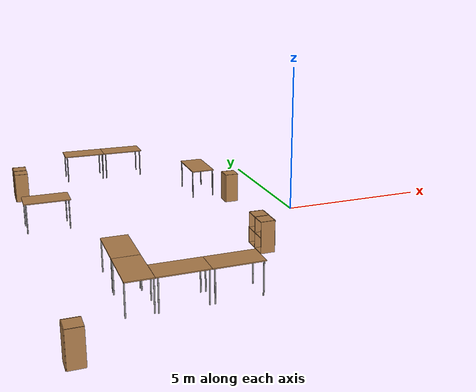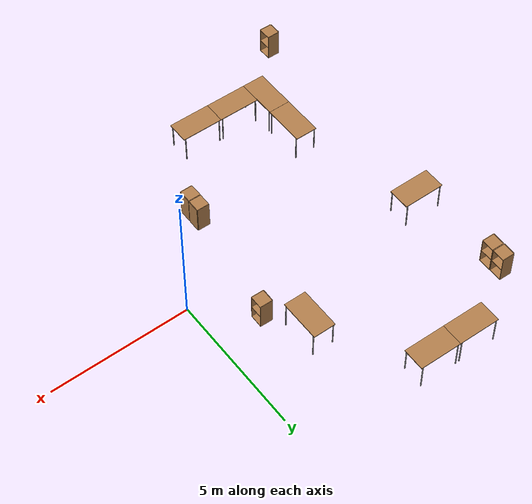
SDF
<sdf version="1.6">
 <world name="default">
  <model name="table_clone_clone_1">
   <static>1</static>
   <link name="link">
    <collision name="surface">
     <pose>0 0 1 0 -0 0</pose>
     <geometry><box><size>1.5 0.8 0.03</size></box></geometry>
     <surface><friction><ode><mu>0.6</mu><mu2>0.6</mu2></ode></friction></surface>
    </collision>
    <visual name="visual1">
     <pose>0 0 1 0 -0 0</pose>
     <geometry><box><size>1.5 0.8 0.03</size></box></geometry>
     <material>
      <script><uri>file://media/materials/scripts/gazebo.material</uri><name>Gazebo/Wood</name></script>
     </material>
    </visual>
    <collision name="front_left_leg">
     <pose>0.68 0.38 0.5 0 -0 0</pose>
     <geometry><cylinder><radius>0.02</radius><length>1</length></cylinder></geometry>
    </collision>
    <visual name="front_left_leg">
     <pose>0.68 0.38 0.5 0 -0 0</pose>
     <geometry><cylinder><radius>0.02</radius><length>1</length></cylinder></geometry>
     <material>
      <script><uri>file://media/materials/scripts/gazebo.material</uri><name>Gazebo/Grey</name></script>
     </material>
    </visual>
    <collision name="front_right_leg">
     <pose>0.68 -0.38 0.5 0 -0 0</pose>
     <geometry><cylinder><radius>0.02</radius><length>1</length></cylinder></geometry>
    </collision>
    <visual name="front_right_leg">
     <pose>0.68 -0.38 0.5 0 -0 0</pose>
     <geometry><cylinder><radius>0.02</radius><length>1</length></cylinder></geometry>
     <material>
      <script><uri>file://media/materials/scripts/gazebo.material</uri><name>Gazebo/Grey</name></script>
     </material>
    </visual>
    <collision name="back_right_leg">
     <pose>-0.68 -0.38 0.5 0 -0 0</pose>
     <geometry><cylinder><radius>0.02</radius><length>1</length></cylinder></geometry>
    </collision>
    <visual name="back_right_leg">
     <pose>-0.68 -0.38 0.5 0 -0 0</pose>
     <geometry><cylinder><radius>0.02</radius><length>1</length></cylinder></geometry>
     <material>
      <script><uri>file://media/materials/scripts/gazebo.material</uri><name>Gazebo/Grey</name></script>
     </material>
    </visual>
    <collision name="back_left_leg">
     <pose>-0.68 0.38 0.5 0 -0 0</pose>
     <geometry><cylinder><radius>0.02</radius><length>1</length></cylinder></geometry>
    </collision>
    <visual name="back_left_leg">
     <pose>-0.68 0.38 0.5 0 -0 0</pose>
     <geometry><cylinder><radius>0.02</radius><length>1</length></cylinder></geometry>
     <material>
      <script><uri>file://media/materials/scripts/gazebo.material</uri><name>Gazebo/Grey</name></script>
     </material>
    </visual>
   </link>
   <pose>-6.87483 -5.09975 0 0 -0 1.56881</pose>
  </model>
  <model name="table_clone_clone_2">
   <static>1</static>
   <link name="link">
    <collision name="surface">
     <pose>0 0 1 0 -0 0</pose>
     <geometry><box><size>1.5 0.8 0.03</size></box></geometry>
     <surface><friction><ode><mu>0.6</mu><mu2>0.6</mu2></ode></friction></surface>
    </collision>
    <visual name="visual1">
     <pose>0 0 1 0 -0 0</pose>
     <geometry><box><size>1.5 0.8 0.03</size></box></geometry>
     <material>
      <script><uri>file://media/materials/scripts/gazebo.material</uri><name>Gazebo/Wood</name></script>
     </material>
    </visual>
    <collision name="front_left_leg">
     <pose>0.68 0.38 0.5 0 -0 0</pose>
     <geometry><cylinder><radius>0.02</radius><length>1</length></cylinder></geometry>
    </collision>
    <visual name="front_left_leg">
     <pose>0.68 0.38 0.5 0 -0 0</pose>
     <geometry><cylinder><radius>0.02</radius><length>1</length></cylinder></geometry>
     <material>
      <script><uri>file://media/materials/scripts/gazebo.material</uri><name>Gazebo/Grey</name></script>
     </material>
    </visual>
    <collision name="front_right_leg">
     <pose>0.68 -0.38 0.5 0 -0 0</pose>
     <geometry><cylinder><radius>0.02</radius><length>1</length></cylinder></geometry>
    </collision>
    <visual name="front_right_leg">
     <pose>0.68 -0.38 0.5 0 -0 0</pose>
     <geometry><cylinder><radius>0.02</radius><length>1</length></cylinder></geometry>
     <material>
      <script><uri>file://media/materials/scripts/gazebo.material</uri><name>Gazebo/Grey</name></script>
     </material>
    </visual>
    <collision name="back_right_leg">
     <pose>-0.68 -0.38 0.5 0 -0 0</pose>
     <geometry><cylinder><radius>0.02</radius><length>1</length></cylinder></geometry>
    </collision>
    <visual name="back_right_leg">
     <pose>-0.68 -0.38 0.5 0 -0 0</pose>
     <geometry><cylinder><radius>0.02</radius><length>1</length></cylinder></geometry>
     <material>
      <script><uri>file://media/materials/scripts/gazebo.material</uri><name>Gazebo/Grey</name></script>
     </material>
    </visual>
    <collision name="back_left_leg">
     <pose>-0.68 0.38 0.5 0 -0 0</pose>
     <geometry><cylinder><radius>0.02</radius><length>1</length></cylinder></geometry>
    </collision>
    <visual name="back_left_leg">
     <pose>-0.68 0.38 0.5 0 -0 0</pose>
     <geometry><cylinder><radius>0.02</radius><length>1</length></cylinder></geometry>
     <material>
      <script><uri>file://media/materials/scripts/gazebo.material</uri><name>Gazebo/Grey</name></script>
     </material>
    </visual>
   </link>
   <pose>-6.86927 -3.59813 0 0 -0 1.56849</pose>
  </model>
  <model name="table_clone_clone_3">
   <static>1</static>
   <link name="link">
    <collision name="surface">
     <pose>0 0 1 0 -0 0</pose>
     <geometry><box><size>1.5 0.8 0.03</size></box></geometry>
     <surface><friction><ode><mu>0.6</mu><mu2>0.6</mu2></ode></friction></surface>
    </collision>
    <visual name="visual1">
     <pose>0 0 1 0 -0 0</pose>
     <geometry><box><size>1.5 0.8 0.03</size></box></geometry>
     <material>
      <script><uri>file://media/materials/scripts/gazebo.material</uri><name>Gazebo/Wood</name></script>
     </material>
    </visual>
    <collision name="front_left_leg">
     <pose>0.68 0.38 0.5 0 -0 0</pose>
     <geometry><cylinder><radius>0.02</radius><length>1</length></cylinder></geometry>
    </collision>
    <visual name="front_left_leg">
     <pose>0.68 0.38 0.5 0 -0 0</pose>
     <geometry><cylinder><radius>0.02</radius><length>1</length></cylinder></geometry>
     <material>
      <script><uri>file://media/materials/scripts/gazebo.material</uri><name>Gazebo/Grey</name></script>
     </material>
    </visual>
    <collision name="front_right_leg">
     <pose>0.68 -0.38 0.5 0 -0 0</pose>
     <geometry><cylinder><radius>0.02</radius><length>1</length></cylinder></geometry>
    </collision>
    <visual name="front_right_leg">
     <pose>0.68 -0.38 0.5 0 -0 0</pose>
     <geometry><cylinder><radius>0.02</radius><length>1</length></cylinder></geometry>
     <material>
      <script><uri>file://media/materials/scripts/gazebo.material</uri><name>Gazebo/Grey</name></script>
     </material>
    </visual>
    <collision name="back_right_leg">
     <pose>-0.68 -0.38 0.5 0 -0 0</pose>
     <geometry><cylinder><radius>0.02</radius><length>1</length></cylinder></geometry>
    </collision>
    <visual name="back_right_leg">
     <pose>-0.68 -0.38 0.5 0 -0 0</pose>
     <geometry><cylinder><radius>0.02</radius><length>1</length></cylinder></geometry>
     <material>
      <script><uri>file://media/materials/scripts/gazebo.material</uri><name>Gazebo/Grey</name></script>
     </material>
    </visual>
    <collision name="back_left_leg">
     <pose>-0.68 0.38 0.5 0 -0 0</pose>
     <geometry><cylinder><radius>0.02</radius><length>1</length></cylinder></geometry>
    </collision>
    <visual name="back_left_leg">
     <pose>-0.68 0.38 0.5 0 -0 0</pose>
     <geometry><cylinder><radius>0.02</radius><length>1</length></cylinder></geometry>
     <material>
      <script><uri>file://media/materials/scripts/gazebo.material</uri><name>Gazebo/Grey</name></script>
     </material>
    </visual>
   </link>
   <pose>-5.72264 -5.45337 0 0 0 -0.004485</pose>
  </model>
  <model name="table_clone_clone_4">
   <static>1</static>
   <link name="link">
    <collision name="surface">
     <pose>0 0 1 0 -0 0</pose>
     <geometry><box><size>1.5 0.8 0.03</size></box></geometry>
     <surface><friction><ode><mu>0.6</mu><mu2>0.6</mu2></ode></friction></surface>
    </collision>
    <visual name="visual1">
     <pose>0 0 1 0 -0 0</pose>
     <geometry><box><size>1.5 0.8 0.03</size></box></geometry>
     <material>
      <script><uri>file://media/materials/scripts/gazebo.material</uri><name>Gazebo/Wood</name></script>
     </material>
    </visual>
    <collision name="front_left_leg">
     <pose>0.68 0.38 0.5 0 -0 0</pose>
     <geometry><cylinder><radius>0.02</radius><length>1</length></cylinder></geometry>
    </collision>
    <visual name="front_left_leg">
     <pose>0.68 0.38 0.5 0 -0 0</pose>
     <geometry><cylinder><radius>0.02</radius><length>1</length></cylinder></geometry>
     <material>
      <script><uri>file://media/materials/scripts/gazebo.material</uri><name>Gazebo/Grey</name></script>
     </material>
    </visual>
    <collision name="front_right_leg">
     <pose>0.68 -0.38 0.5 0 -0 0</pose>
     <geometry><cylinder><radius>0.02</radius><length>1</length></cylinder></geometry>
    </collision>
    <visual name="front_right_leg">
     <pose>0.68 -0.38 0.5 0 -0 0</pose>
     <geometry><cylinder><radius>0.02</radius><length>1</length></cylinder></geometry>
     <material>
      <script><uri>file://media/materials/scripts/gazebo.material</uri><name>Gazebo/Grey</name></script>
     </material>
    </visual>
    <collision name="back_right_leg">
     <pose>-0.68 -0.38 0.5 0 -0 0</pose>
     <geometry><cylinder><radius>0.02</radius><length>1</length></cylinder></geometry>
    </collision>
    <visual name="back_right_leg">
     <pose>-0.68 -0.38 0.5 0 -0 0</pose>
     <geometry><cylinder><radius>0.02</radius><length>1</length></cylinder></geometry>
     <material>
      <script><uri>file://media/materials/scripts/gazebo.material</uri><name>Gazebo/Grey</name></script>
     </material>
    </visual>
    <collision name="back_left_leg">
     <pose>-0.68 0.38 0.5 0 -0 0</pose>
     <geometry><cylinder><radius>0.02</radius><length>1</length></cylinder></geometry>
    </collision>
    <visual name="back_left_leg">
     <pose>-0.68 0.38 0.5 0 -0 0</pose>
     <geometry><cylinder><radius>0.02</radius><length>1</length></cylinder></geometry>
     <material>
      <script><uri>file://media/materials/scripts/gazebo.material</uri><name>Gazebo/Grey</name></script>
     </material>
    </visual>
   </link>
   <pose>-4.22221 -5.45993 0 0 0 -0.00315</pose>
  </model>
  <model name="table_clone_clone_2_clone">
   <static>1</static>
   <link name="link">
    <collision name="surface">
     <pose>0 0 1 0 -0 0</pose>
     <geometry><box><size>1.5 0.8 0.03</size></box></geometry>
     <surface><friction><ode><mu>0.6</mu><mu2>0.6</mu2></ode></friction></surface>
    </collision>
    <visual name="visual1">
     <pose>0 0 1 0 -0 0</pose>
     <geometry><box><size>1.5 0.8 0.03</size></box></geometry>
     <material>
      <script><uri>file://media/materials/scripts/gazebo.material</uri><name>Gazebo/Wood</name></script>
     </material>
    </visual>
    <collision name="front_left_leg">
     <pose>0.68 0.38 0.5 0 -0 0</pose>
     <geometry><cylinder><radius>0.02</radius><length>1</length></cylinder></geometry>
    </collision>
    <visual name="front_left_leg">
     <pose>0.68 0.38 0.5 0 -0 0</pose>
     <geometry><cylinder><radius>0.02</radius><length>1</length></cylinder></geometry>
     <material>
      <script><uri>file://media/materials/scripts/gazebo.material</uri><name>Gazebo/Grey</name></script>
     </material>
    </visual>
    <collision name="front_right_leg">
     <pose>0.68 -0.38 0.5 0 -0 0</pose>
     <geometry><cylinder><radius>0.02</radius><length>1</length></cylinder></geometry>
    </collision>
    <visual name="front_right_leg">
     <pose>0.68 -0.38 0.5 0 -0 0</pose>
     <geometry><cylinder><radius>0.02</radius><length>1</length></cylinder></geometry>
     <material>
      <script><uri>file://media/materials/scripts/gazebo.material</uri><name>Gazebo/Grey</name></script>
     </material>
    </visual>
    <collision name="back_right_leg">
     <pose>-0.68 -0.38 0.5 0 -0 0</pose>
     <geometry><cylinder><radius>0.02</radius><length>1</length></cylinder></geometry>
    </collision>
    <visual name="back_right_leg">
     <pose>-0.68 -0.38 0.5 0 -0 0</pose>
     <geometry><cylinder><radius>0.02</radius><length>1</length></cylinder></geometry>
     <material>
      <script><uri>file://media/materials/scripts/gazebo.material</uri><name>Gazebo/Grey</name></script>
     </material>
    </visual>
    <collision name="back_left_leg">
     <pose>-0.68 0.38 0.5 0 -0 0</pose>
     <geometry><cylinder><radius>0.02</radius><length>1</length></cylinder></geometry>
    </collision>
    <visual name="back_left_leg">
     <pose>-0.68 0.38 0.5 0 -0 0</pose>
     <geometry><cylinder><radius>0.02</radius><length>1</length></cylinder></geometry>
     <material>
      <script><uri>file://media/materials/scripts/gazebo.material</uri><name>Gazebo/Grey</name></script>
     </material>
    </visual>
   </link>
   <pose>-8.25767 1.13785 0 0 0 -0.000702</pose>
  </model>
  <model name="table_clone_clone_2_clone_clone">
   <static>1</static>
   <link name="link">
    <collision name="surface">
     <pose>0 0 1 0 -0 0</pose>
     <geometry><box><size>1.5 0.8 0.03</size></box></geometry>
     <surface><friction><ode><mu>0.6</mu><mu2>0.6</mu2></ode></friction></surface>
    </collision>
    <visual name="visual1">
     <pose>0 0 1 0 -0 0</pose>
     <geometry><box><size>1.5 0.8 0.03</size></box></geometry>
     <material>
      <script><uri>file://media/materials/scripts/gazebo.material</uri><name>Gazebo/Wood</name></script>
     </material>
    </visual>
    <collision name="front_left_leg">
     <pose>0.68 0.38 0.5 0 -0 0</pose>
     <geometry><cylinder><radius>0.02</radius><length>1</length></cylinder></geometry>
    </collision>
    <visual name="front_left_leg">
     <pose>0.68 0.38 0.5 0 -0 0</pose>
     <geometry><cylinder><radius>0.02</radius><length>1</length></cylinder></geometry>
     <material>
      <script><uri>file://media/materials/scripts/gazebo.material</uri><name>Gazebo/Grey</name></script>
     </material>
    </visual>
    <collision name="front_right_leg">
     <pose>0.68 -0.38 0.5 0 -0 0</pose>
     <geometry><cylinder><radius>0.02</radius><length>1</length></cylinder></geometry>
    </collision>
    <visual name="front_right_leg">
     <pose>0.68 -0.38 0.5 0 -0 0</pose>
     <geometry><cylinder><radius>0.02</radius><length>1</length></cylinder></geometry>
     <material>
      <script><uri>file://media/materials/scripts/gazebo.material</uri><name>Gazebo/Grey</name></script>
     </material>
    </visual>
    <collision name="back_right_leg">
     <pose>-0.68 -0.38 0.5 0 -0 0</pose>
     <geometry><cylinder><radius>0.02</radius><length>1</length></cylinder></geometry>
    </collision>
    <visual name="back_right_leg">
     <pose>-0.68 -0.38 0.5 0 -0 0</pose>
     <geometry><cylinder><radius>0.02</radius><length>1</length></cylinder></geometry>
     <material>
      <script><uri>file://media/materials/scripts/gazebo.material</uri><name>Gazebo/Grey</name></script>
     </material>
    </visual>
    <collision name="back_left_leg">
     <pose>-0.68 0.38 0.5 0 -0 0</pose>
     <geometry><cylinder><radius>0.02</radius><length>1</length></cylinder></geometry>
    </collision>
    <visual name="back_left_leg">
     <pose>-0.68 0.38 0.5 0 -0 0</pose>
     <geometry><cylinder><radius>0.02</radius><length>1</length></cylinder></geometry>
     <material>
      <script><uri>file://media/materials/scripts/gazebo.material</uri><name>Gazebo/Grey</name></script>
     </material>
    </visual>
   </link>
   <pose>-6.17841 6.14008 0 0 0 -0.016556</pose>
  </model>
  <model name="table_clone_clone_2_clone_clone_0">
   <static>1</static>
   <link name="link">
    <collision name="surface">
     <pose>0 0 1 0 -0 0</pose>
     <geometry><box><size>1.5 0.8 0.03</size></box></geometry>
     <surface><friction><ode><mu>0.6</mu><mu2>0.6</mu2></ode></friction></surface>
    </collision>
    <visual name="visual1">
     <pose>0 0 1 0 -0 0</pose>
     <geometry><box><size>1.5 0.8 0.03</size></box></geometry>
     <material>
      <script><uri>file://media/materials/scripts/gazebo.material</uri><name>Gazebo/Wood</name></script>
     </material>
    </visual>
    <collision name="front_left_leg">
     <pose>0.68 0.38 0.5 0 -0 0</pose>
     <geometry><cylinder><radius>0.02</radius><length>1</length></cylinder></geometry>
    </collision>
    <visual name="front_left_leg">
     <pose>0.68 0.38 0.5 0 -0 0</pose>
     <geometry><cylinder><radius>0.02</radius><length>1</length></cylinder></geometry>
     <material>
      <script><uri>file://media/materials/scripts/gazebo.material</uri><name>Gazebo/Grey</name></script>
     </material>
    </visual>
    <collision name="front_right_leg">
     <pose>0.68 -0.38 0.5 0 -0 0</pose>
     <geometry><cylinder><radius>0.02</radius><length>1</length></cylinder></geometry>
    </collision>
    <visual name="front_right_leg">
     <pose>0.68 -0.38 0.5 0 -0 0</pose>
     <geometry><cylinder><radius>0.02</radius><length>1</length></cylinder></geometry>
     <material>
      <script><uri>file://media/materials/scripts/gazebo.material</uri><name>Gazebo/Grey</name></script>
     </material>
    </visual>
    <collision name="back_right_leg">
     <pose>-0.68 -0.38 0.5 0 -0 0</pose>
     <geometry><cylinder><radius>0.02</radius><length>1</length></cylinder></geometry>
    </collision>
    <visual name="back_right_leg">
     <pose>-0.68 -0.38 0.5 0 -0 0</pose>
     <geometry><cylinder><radius>0.02</radius><length>1</length></cylinder></geometry>
     <material>
      <script><uri>file://media/materials/scripts/gazebo.material</uri><name>Gazebo/Grey</name></script>
     </material>
    </visual>
    <collision name="back_left_leg">
     <pose>-0.68 0.38 0.5 0 -0 0</pose>
     <geometry><cylinder><radius>0.02</radius><length>1</length></cylinder></geometry>
    </collision>
    <visual name="back_left_leg">
     <pose>-0.68 0.38 0.5 0 -0 0</pose>
     <geometry><cylinder><radius>0.02</radius><length>1</length></cylinder></geometry>
     <material>
      <script><uri>file://media/materials/scripts/gazebo.material</uri><name>Gazebo/Grey</name></script>
     </material>
    </visual>
   </link>
   <pose>-4.67945 6.11581 0 0 0 -0.016556</pose>
  </model>
  <model name="table_clone_clone_2_clone_clone_1_clone">
   <static>1</static>
   <link name="link">
    <collision name="surface">
     <pose>0 0 1 0 -0 0</pose>
     <geometry><box><size>1.5 0.8 0.03</size></box></geometry>
     <surface><friction><ode><mu>0.6</mu><mu2>0.6</mu2></ode></friction></surface>
    </collision>
    <visual name="visual1">
     <pose>0 0 1 0 -0 0</pose>
     <geometry><box><size>1.5 0.8 0.03</size></box></geometry>
     <material>
      <script><uri>file://media/materials/scripts/gazebo.material</uri><name>Gazebo/Wood</name></script>
     </material>
    </visual>
    <collision name="front_left_leg">
     <pose>0.68 0.38 0.5 0 -0 0</pose>
     <geometry><cylinder><radius>0.02</radius><length>1</length></cylinder></geometry>
    </collision>
    <visual name="front_left_leg">
     <pose>0.68 0.38 0.5 0 -0 0</pose>
     <geometry><cylinder><radius>0.02</radius><length>1</length></cylinder></geometry>
     <material>
      <script><uri>file://media/materials/scripts/gazebo.material</uri><name>Gazebo/Grey</name></script>
     </material>
    </visual>
    <collision name="front_right_leg">
     <pose>0.68 -0.38 0.5 0 -0 0</pose>
     <geometry><cylinder><radius>0.02</radius><length>1</length></cylinder></geometry>
    </collision>
    <visual name="front_right_leg">
     <pose>0.68 -0.38 0.5 0 -0 0</pose>
     <geometry><cylinder><radius>0.02</radius><length>1</length></cylinder></geometry>
     <material>
      <script><uri>file://media/materials/scripts/gazebo.material</uri><name>Gazebo/Grey</name></script>
     </material>
    </visual>
    <collision name="back_right_leg">
     <pose>-0.68 -0.38 0.5 0 -0 0</pose>
     <geometry><cylinder><radius>0.02</radius><length>1</length></cylinder></geometry>
    </collision>
    <visual name="back_right_leg">
     <pose>-0.68 -0.38 0.5 0 -0 0</pose>
     <geometry><cylinder><radius>0.02</radius><length>1</length></cylinder></geometry>
     <material>
      <script><uri>file://media/materials/scripts/gazebo.material</uri><name>Gazebo/Grey</name></script>
     </material>
    </visual>
    <collision name="back_left_leg">
     <pose>-0.68 0.38 0.5 0 -0 0</pose>
     <geometry><cylinder><radius>0.02</radius><length>1</length></cylinder></geometry>
    </collision>
    <visual name="back_left_leg">
     <pose>-0.68 0.38 0.5 0 -0 0</pose>
     <geometry><cylinder><radius>0.02</radius><length>1</length></cylinder></geometry>
     <material>
      <script><uri>file://media/materials/scripts/gazebo.material</uri><name>Gazebo/Grey</name></script>
     </material>
    </visual>
   </link>
   <pose>-2.48296 2.96815 0 0 0 -1.57413</pose>
  </model>
  <model name="cabinet">
   <static>1</static>
   <link name="cabinet_bottom_plate">
    <inertial>
     <pose>0 0 -1 0 -0 0</pose>
     <inertia><ixx>2.05</ixx><ixy>0</ixy><ixz>0</ixz><iyy>2.05</iyy><iyz>0</iyz><izz>2.05</izz></inertia>
     <mass>25</mass>
    </inertial>
    <collision name="cabinet_bottom_plate_geom">
     <pose>0 0 0.01 0 -0 0</pose>
     <geometry><box><size>0.45 0.45 0.02</size></box></geometry>
    </collision>
    <visual name="cabinet_bottom_plate_geom_visual">
     <pose>0 0 0.01 0 -0 0</pose>
     <geometry><box><size>0.45 0.45 0.02</size></box></geometry>
     <material>
      <script><uri>file://media/materials/scripts/gazebo.material</uri><name>Gazebo/Wood</name></script>
     </material>
    </visual>
    <collision name="cabinet_bottom_plate_geom_cabinet_back_plate">
     <pose>0.235 0 0.51 0 -0 0</pose>
     <geometry><box><size>0.02 0.45 1.02</size></box></geometry>
    </collision>
    <visual name="cabinet_bottom_plate_geom_cabinet_back_plate_visual">
     <pose>0.235 0 0.51 0 -0 0</pose>
     <geometry><box><size>0.02 0.45 1.02</size></box></geometry>
     <material>
      <script><uri>file://media/materials/scripts/gazebo.material</uri><name>Gazebo/Wood</name></script>
     </material>
    </visual>
    <collision name="cabinet_bottom_plate_geom_cabinet_left_plate">
     <pose>0 0.235 0.51 0 -0 0</pose>
     <geometry><box><size>0.45 0.02 1.02</size></box></geometry>
    </collision>
    <visual name="cabinet_bottom_plate_geom_cabinet_left_plate_visual">
     <pose>0 0.235 0.51 0 -0 0</pose>
     <geometry><box><size>0.45 0.02 1.02</size></box></geometry>
     <material>
      <script><uri>file://media/materials/scripts/gazebo.material</uri><name>Gazebo/Wood</name></script>
     </material>
    </visual>
    <collision name="cabinet_bottom_plate_geom_cabinet_middle_plate">
     <pose>0 0 0.51 0 -0 0</pose>
     <geometry><box><size>0.45 0.45 0.02</size></box></geometry>
    </collision>
    <visual name="cabinet_bottom_plate_geom_cabinet_middle_plate_visual">
     <pose>0 0 0.51 0 -0 0</pose>
     <geometry><box><size>0.45 0.45 0.02</size></box></geometry>
     <material>
      <script><uri>file://media/materials/scripts/gazebo.material</uri><name>Gazebo/Wood</name></script>
     </material>
    </visual>
    <collision name="cabinet_bottom_plate_geom_cabinet_right_plate">
     <pose>0 -0.235 0.51 0 -0 0</pose>
     <geometry><box><size>0.45 0.02 1.02</size></box></geometry>
    </collision>
    <visual name="cabinet_bottom_plate_geom_cabinet_right_plate_visual">
     <pose>0 -0.235 0.51 0 -0 0</pose>
     <geometry><box><size>0.45 0.02 1.02</size></box></geometry>
     <material>
      <script><uri>file://media/materials/scripts/gazebo.material</uri><name>Gazebo/Wood</name></script>
     </material>
    </visual>
    <collision name="cabinet_bottom_plate_geom_cabinet_top_plate">
     <pose>0 0 1.01 0 -0 0</pose>
     <geometry><box><size>0.45 0.45 0.02</size></box></geometry>
    </collision>
    <visual name="cabinet_bottom_plate_geom_cabinet_top_plate_visual">
     <pose>0 0 1.01 0 -0 0</pose>
     <geometry><box><size>0.45 0.45 0.02</size></box></geometry>
     <material>
      <script><uri>file://media/materials/scripts/gazebo.material</uri><name>Gazebo/Wood</name></script>
     </material>
    </visual>
   </link>
   <pose>-8.76229 4.25877 0 0 -0 3.12286</pose>
  </model>
  <model name="cabinet_clone_0">
   <static>1</static>
   <link name="cabinet_bottom_plate">
    <inertial>
     <pose>0 0 -1 0 -0 0</pose>
     <inertia><ixx>2.05</ixx><ixy>0</ixy><ixz>0</ixz><iyy>2.05</iyy><iyz>0</iyz><izz>2.05</izz></inertia>
     <mass>25</mass>
    </inertial>
    <collision name="cabinet_bottom_plate_geom">
     <pose>0 0 0.01 0 -0 0</pose>
     <geometry><box><size>0.45 0.45 0.02</size></box></geometry>
    </collision>
    <visual name="cabinet_bottom_plate_geom_visual">
     <pose>0 0 0.01 0 -0 0</pose>
     <geometry><box><size>0.45 0.45 0.02</size></box></geometry>
     <material>
      <script><uri>file://media/materials/scripts/gazebo.material</uri><name>Gazebo/Wood</name></script>
     </material>
    </visual>
    <collision name="cabinet_bottom_plate_geom_cabinet_back_plate">
     <pose>0.235 0 0.51 0 -0 0</pose>
     <geometry><box><size>0.02 0.45 1.02</size></box></geometry>
    </collision>
    <visual name="cabinet_bottom_plate_geom_cabinet_back_plate_visual">
     <pose>0.235 0 0.51 0 -0 0</pose>
     <geometry><box><size>0.02 0.45 1.02</size></box></geometry>
     <material>
      <script><uri>file://media/materials/scripts/gazebo.material</uri><name>Gazebo/Wood</name></script>
     </material>
    </visual>
    <collision name="cabinet_bottom_plate_geom_cabinet_left_plate">
     <pose>0 0.235 0.51 0 -0 0</pose>
     <geometry><box><size>0.45 0.02 1.02</size></box></geometry>
    </collision>
    <visual name="cabinet_bottom_plate_geom_cabinet_left_plate_visual">
     <pose>0 0.235 0.51 0 -0 0</pose>
     <geometry><box><size>0.45 0.02 1.02</size></box></geometry>
     <material>
      <script><uri>file://media/materials/scripts/gazebo.material</uri><name>Gazebo/Wood</name></script>
     </material>
    </visual>
    <collision name="cabinet_bottom_plate_geom_cabinet_middle_plate">
     <pose>0 0 0.51 0 -0 0</pose>
     <geometry><box><size>0.45 0.45 0.02</size></box></geometry>
    </collision>
    <visual name="cabinet_bottom_plate_geom_cabinet_middle_plate_visual">
     <pose>0 0 0.51 0 -0 0</pose>
     <geometry><box><size>0.45 0.45 0.02</size></box></geometry>
     <material>
      <script><uri>file://media/materials/scripts/gazebo.material</uri><name>Gazebo/Wood</name></script>
     </material>
    </visual>
    <collision name="cabinet_bottom_plate_geom_cabinet_right_plate">
     <pose>0 -0.235 0.51 0 -0 0</pose>
     <geometry><box><size>0.45 0.02 1.02</size></box></geometry>
    </collision>
    <visual name="cabinet_bottom_plate_geom_cabinet_right_plate_visual">
     <pose>0 -0.235 0.51 0 -0 0</pose>
     <geometry><box><size>0.45 0.02 1.02</size></box></geometry>
     <material>
      <script><uri>file://media/materials/scripts/gazebo.material</uri><name>Gazebo/Wood</name></script>
     </material>
    </visual>
    <collision name="cabinet_bottom_plate_geom_cabinet_top_plate">
     <pose>0 0 1.01 0 -0 0</pose>
     <geometry><box><size>0.45 0.45 0.02</size></box></geometry>
    </collision>
    <visual name="cabinet_bottom_plate_geom_cabinet_top_plate_visual">
     <pose>0 0 1.01 0 -0 0</pose>
     <geometry><box><size>0.45 0.45 0.02</size></box></geometry>
     <material>
      <script><uri>file://media/materials/scripts/gazebo.material</uri><name>Gazebo/Wood</name></script>
     </material>
    </visual>
   </link>
   <pose>-8.7605 -7.41911 0 0 -0 3.13965</pose>
  </model>
  <model name="cabinet_clone_1">
   <static>1</static>
   <link name="cabinet_bottom_plate">
    <inertial>
     <pose>0 0 -1 0 -0 0</pose>
     <inertia><ixx>2.05</ixx><ixy>0</ixy><ixz>0</ixz><iyy>2.05</iyy><iyz>0</iyz><izz>2.05</izz></inertia>
     <mass>25</mass>
    </inertial>
    <collision name="cabinet_bottom_plate_geom">
     <pose>0 0 0.01 0 -0 0</pose>
     <geometry><box><size>0.45 0.45 0.02</size></box></geometry>
    </collision>
    <visual name="cabinet_bottom_plate_geom_visual">
     <pose>0 0 0.01 0 -0 0</pose>
     <geometry><box><size>0.45 0.45 0.02</size></box></geometry>
     <material>
      <script><uri>file://media/materials/scripts/gazebo.material</uri><name>Gazebo/Wood</name></script>
     </material>
    </visual>
    <collision name="cabinet_bottom_plate_geom_cabinet_back_plate">
     <pose>0.235 0 0.51 0 -0 0</pose>
     <geometry><box><size>0.02 0.45 1.02</size></box></geometry>
    </collision>
    <visual name="cabinet_bottom_plate_geom_cabinet_back_plate_visual">
     <pose>0.235 0 0.51 0 -0 0</pose>
     <geometry><box><size>0.02 0.45 1.02</size></box></geometry>
     <material>
      <script><uri>file://media/materials/scripts/gazebo.material</uri><name>Gazebo/Wood</name></script>
     </material>
    </visual>
    <collision name="cabinet_bottom_plate_geom_cabinet_left_plate">
     <pose>0 0.235 0.51 0 -0 0</pose>
     <geometry><box><size>0.45 0.02 1.02</size></box></geometry>
    </collision>
    <visual name="cabinet_bottom_plate_geom_cabinet_left_plate_visual">
     <pose>0 0.235 0.51 0 -0 0</pose>
     <geometry><box><size>0.45 0.02 1.02</size></box></geometry>
     <material>
      <script><uri>file://media/materials/scripts/gazebo.material</uri><name>Gazebo/Wood</name></script>
     </material>
    </visual>
    <collision name="cabinet_bottom_plate_geom_cabinet_middle_plate">
     <pose>0 0 0.51 0 -0 0</pose>
     <geometry><box><size>0.45 0.45 0.02</size></box></geometry>
    </collision>
    <visual name="cabinet_bottom_plate_geom_cabinet_middle_plate_visual">
     <pose>0 0 0.51 0 -0 0</pose>
     <geometry><box><size>0.45 0.45 0.02</size></box></geometry>
     <material>
      <script><uri>file://media/materials/scripts/gazebo.material</uri><name>Gazebo/Wood</name></script>
     </material>
    </visual>
    <collision name="cabinet_bottom_plate_geom_cabinet_right_plate">
     <pose>0 -0.235 0.51 0 -0 0</pose>
     <geometry><box><size>0.45 0.02 1.02</size></box></geometry>
    </collision>
    <visual name="cabinet_bottom_plate_geom_cabinet_right_plate_visual">
     <pose>0 -0.235 0.51 0 -0 0</pose>
     <geometry><box><size>0.45 0.02 1.02</size></box></geometry>
     <material>
      <script><uri>file://media/materials/scripts/gazebo.material</uri><name>Gazebo/Wood</name></script>
     </material>
    </visual>
    <collision name="cabinet_bottom_plate_geom_cabinet_top_plate">
     <pose>0 0 1.01 0 -0 0</pose>
     <geometry><box><size>0.45 0.45 0.02</size></box></geometry>
    </collision>
    <visual name="cabinet_bottom_plate_geom_cabinet_top_plate_visual">
     <pose>0 0 1.01 0 -0 0</pose>
     <geometry><box><size>0.45 0.45 0.02</size></box></geometry>
     <material>
      <script><uri>file://media/materials/scripts/gazebo.material</uri><name>Gazebo/Wood</name></script>
     </material>
    </visual>
   </link>
   <pose>-2.31729 -2.59065 0 0 0 -0.012606</pose>
  </model>
  <model name="cabinet_clone_2">
   <static>1</static>
   <link name="cabinet_bottom_plate">
    <inertial>
     <pose>0 0 -1 0 -0 0</pose>
     <inertia><ixx>2.05</ixx><ixy>0</ixy><ixz>0</ixz><iyy>2.05</iyy><iyz>0</iyz><izz>2.05</izz></inertia>
     <mass>25</mass>
    </inertial>
    <collision name="cabinet_bottom_plate_geom">
     <pose>0 0 0.01 0 -0 0</pose>
     <geometry><box><size>0.45 0.45 0.02</size></box></geometry>
    </collision>
    <visual name="cabinet_bottom_plate_geom_visual">
     <pose>0 0 0.01 0 -0 0</pose>
     <geometry><box><size>0.45 0.45 0.02</size></box></geometry>
     <material>
      <script><uri>file://media/materials/scripts/gazebo.material</uri><name>Gazebo/Wood</name></script>
     </material>
    </visual>
    <collision name="cabinet_bottom_plate_geom_cabinet_back_plate">
     <pose>0.235 0 0.51 0 -0 0</pose>
     <geometry><box><size>0.02 0.45 1.02</size></box></geometry>
    </collision>
    <visual name="cabinet_bottom_plate_geom_cabinet_back_plate_visual">
     <pose>0.235 0 0.51 0 -0 0</pose>
     <geometry><box><size>0.02 0.45 1.02</size></box></geometry>
     <material>
      <script><uri>file://media/materials/scripts/gazebo.material</uri><name>Gazebo/Wood</name></script>
     </material>
    </visual>
    <collision name="cabinet_bottom_plate_geom_cabinet_left_plate">
     <pose>0 0.235 0.51 0 -0 0</pose>
     <geometry><box><size>0.45 0.02 1.02</size></box></geometry>
    </collision>
    <visual name="cabinet_bottom_plate_geom_cabinet_left_plate_visual">
     <pose>0 0.235 0.51 0 -0 0</pose>
     <geometry><box><size>0.45 0.02 1.02</size></box></geometry>
     <material>
      <script><uri>file://media/materials/scripts/gazebo.material</uri><name>Gazebo/Wood</name></script>
     </material>
    </visual>
    <collision name="cabinet_bottom_plate_geom_cabinet_middle_plate">
     <pose>0 0 0.51 0 -0 0</pose>
     <geometry><box><size>0.45 0.45 0.02</size></box></geometry>
    </collision>
    <visual name="cabinet_bottom_plate_geom_cabinet_middle_plate_visual">
     <pose>0 0 0.51 0 -0 0</pose>
     <geometry><box><size>0.45 0.45 0.02</size></box></geometry>
     <material>
      <script><uri>file://media/materials/scripts/gazebo.material</uri><name>Gazebo/Wood</name></script>
     </material>
    </visual>
    <collision name="cabinet_bottom_plate_geom_cabinet_right_plate">
     <pose>0 -0.235 0.51 0 -0 0</pose>
     <geometry><box><size>0.45 0.02 1.02</size></box></geometry>
    </collision>
    <visual name="cabinet_bottom_plate_geom_cabinet_right_plate_visual">
     <pose>0 -0.235 0.51 0 -0 0</pose>
     <geometry><box><size>0.45 0.02 1.02</size></box></geometry>
     <material>
      <script><uri>file://media/materials/scripts/gazebo.material</uri><name>Gazebo/Wood</name></script>
     </material>
    </visual>
    <collision name="cabinet_bottom_plate_geom_cabinet_top_plate">
     <pose>0 0 1.01 0 -0 0</pose>
     <geometry><box><size>0.45 0.45 0.02</size></box></geometry>
    </collision>
    <visual name="cabinet_bottom_plate_geom_cabinet_top_plate_visual">
     <pose>0 0 1.01 0 -0 0</pose>
     <geometry><box><size>0.45 0.45 0.02</size></box></geometry>
     <material>
      <script><uri>file://media/materials/scripts/gazebo.material</uri><name>Gazebo/Wood</name></script>
     </material>
    </visual>
   </link>
   <pose>-2.32402 -3.07586 0 0 -0 0.006249</pose>
  </model>
  <model name="cabinet_clone_1_clone_clone">
   <static>1</static>
   <link name="cabinet_bottom_plate">
    <inertial>
     <pose>0 0 -1 0 -0 0</pose>
     <inertia><ixx>2.05</ixx><ixy>0</ixy><ixz>0</ixz><iyy>2.05</iyy><iyz>0</iyz><izz>2.05</izz></inertia>
     <mass>25</mass>
    </inertial>
    <collision name="cabinet_bottom_plate_geom">
     <pose>0 0 0.01 0 -0 0</pose>
     <geometry><box><size>0.45 0.45 0.02</size></box></geometry>
    </collision>
    <visual name="cabinet_bottom_plate_geom_visual">
     <pose>0 0 0.01 0 -0 0</pose>
     <geometry><box><size>0.45 0.45 0.02</size></box></geometry>
     <material>
      <script><uri>file://media/materials/scripts/gazebo.material</uri><name>Gazebo/Wood</name></script>
     </material>
    </visual>
    <collision name="cabinet_bottom_plate_geom_cabinet_back_plate">
     <pose>0.235 0 0.51 0 -0 0</pose>
     <geometry><box><size>0.02 0.45 1.02</size></box></geometry>
    </collision>
    <visual name="cabinet_bottom_plate_geom_cabinet_back_plate_visual">
     <pose>0.235 0 0.51 0 -0 0</pose>
     <geometry><box><size>0.02 0.45 1.02</size></box></geometry>
     <material>
      <script><uri>file://media/materials/scripts/gazebo.material</uri><name>Gazebo/Wood</name></script>
     </material>
    </visual>
    <collision name="cabinet_bottom_plate_geom_cabinet_left_plate">
     <pose>0 0.235 0.51 0 -0 0</pose>
     <geometry><box><size>0.45 0.02 1.02</size></box></geometry>
    </collision>
    <visual name="cabinet_bottom_plate_geom_cabinet_left_plate_visual">
     <pose>0 0.235 0.51 0 -0 0</pose>
     <geometry><box><size>0.45 0.02 1.02</size></box></geometry>
     <material>
      <script><uri>file://media/materials/scripts/gazebo.material</uri><name>Gazebo/Wood</name></script>
     </material>
    </visual>
    <collision name="cabinet_bottom_plate_geom_cabinet_middle_plate">
     <pose>0 0 0.51 0 -0 0</pose>
     <geometry><box><size>0.45 0.45 0.02</size></box></geometry>
    </collision>
    <visual name="cabinet_bottom_plate_geom_cabinet_middle_plate_visual">
     <pose>0 0 0.51 0 -0 0</pose>
     <geometry><box><size>0.45 0.45 0.02</size></box></geometry>
     <material>
      <script><uri>file://media/materials/scripts/gazebo.material</uri><name>Gazebo/Wood</name></script>
     </material>
    </visual>
    <collision name="cabinet_bottom_plate_geom_cabinet_right_plate">
     <pose>0 -0.235 0.51 0 -0 0</pose>
     <geometry><box><size>0.45 0.02 1.02</size></box></geometry>
    </collision>
    <visual name="cabinet_bottom_plate_geom_cabinet_right_plate_visual">
     <pose>0 -0.235 0.51 0 -0 0</pose>
     <geometry><box><size>0.45 0.02 1.02</size></box></geometry>
     <material>
      <script><uri>file://media/materials/scripts/gazebo.material</uri><name>Gazebo/Wood</name></script>
     </material>
    </visual>
    <collision name="cabinet_bottom_plate_geom_cabinet_top_plate">
     <pose>0 0 1.01 0 -0 0</pose>
     <geometry><box><size>0.45 0.45 0.02</size></box></geometry>
    </collision>
    <visual name="cabinet_bottom_plate_geom_cabinet_top_plate_visual">
     <pose>0 0 1.01 0 -0 0</pose>
     <geometry><box><size>0.45 0.45 0.02</size></box></geometry>
     <material>
      <script><uri>file://media/materials/scripts/gazebo.material</uri><name>Gazebo/Wood</name></script>
     </material>
    </visual>
   </link>
   <pose>-1.66455 1.64182 0 0 -0 3.11947</pose>
  </model>
  <model name="cabinet_clone">
   <static>1</static>
   <link name="cabinet_bottom_plate">
    <inertial>
     <pose>0 0 -1 0 -0 0</pose>
     <inertia><ixx>2.05</ixx><ixy>0</ixy><ixz>0</ixz><iyy>2.05</iyy><iyz>0</iyz><izz>2.05</izz></inertia>
     <mass>25</mass>
    </inertial>
    <collision name="cabinet_bottom_plate_geom">
     <pose>0 0 0.01 0 -0 0</pose>
     <geometry><box><size>0.45 0.45 0.02</size></box></geometry>
    </collision>
    <visual name="cabinet_bottom_plate_geom_visual">
     <pose>0 0 0.01 0 -0 0</pose>
     <geometry><box><size>0.45 0.45 0.02</size></box></geometry>
     <material>
      <script><uri>file://media/materials/scripts/gazebo.material</uri><name>Gazebo/Wood</name></script>
     </material>
    </visual>
    <collision name="cabinet_bottom_plate_geom_cabinet_back_plate">
     <pose>0.235 0 0.51 0 -0 0</pose>
     <geometry><box><size>0.02 0.45 1.02</size></box></geometry>
    </collision>
    <visual name="cabinet_bottom_plate_geom_cabinet_back_plate_visual">
     <pose>0.235 0 0.51 0 -0 0</pose>
     <geometry><box><size>0.02 0.45 1.02</size></box></geometry>
     <material>
      <script><uri>file://media/materials/scripts/gazebo.material</uri><name>Gazebo/Wood</name></script>
     </material>
    </visual>
    <collision name="cabinet_bottom_plate_geom_cabinet_left_plate">
     <pose>0 0.235 0.51 0 -0 0</pose>
     <geometry><box><size>0.45 0.02 1.02</size></box></geometry>
    </collision>
    <visual name="cabinet_bottom_plate_geom_cabinet_left_plate_visual">
     <pose>0 0.235 0.51 0 -0 0</pose>
     <geometry><box><size>0.45 0.02 1.02</size></box></geometry>
     <material>
      <script><uri>file://media/materials/scripts/gazebo.material</uri><name>Gazebo/Wood</name></script>
     </material>
    </visual>
    <collision name="cabinet_bottom_plate_geom_cabinet_middle_plate">
     <pose>0 0 0.51 0 -0 0</pose>
     <geometry><box><size>0.45 0.45 0.02</size></box></geometry>
    </collision>
    <visual name="cabinet_bottom_plate_geom_cabinet_middle_plate_visual">
     <pose>0 0 0.51 0 -0 0</pose>
     <geometry><box><size>0.45 0.45 0.02</size></box></geometry>
     <material>
      <script><uri>file://media/materials/scripts/gazebo.material</uri><name>Gazebo/Wood</name></script>
     </material>
    </visual>
    <collision name="cabinet_bottom_plate_geom_cabinet_right_plate">
     <pose>0 -0.235 0.51 0 -0 0</pose>
     <geometry><box><size>0.45 0.02 1.02</size></box></geometry>
    </collision>
    <visual name="cabinet_bottom_plate_geom_cabinet_right_plate_visual">
     <pose>0 -0.235 0.51 0 -0 0</pose>
     <geometry><box><size>0.45 0.02 1.02</size></box></geometry>
     <material>
      <script><uri>file://media/materials/scripts/gazebo.material</uri><name>Gazebo/Wood</name></script>
     </material>
    </visual>
    <collision name="cabinet_bottom_plate_geom_cabinet_top_plate">
     <pose>0 0 1.01 0 -0 0</pose>
     <geometry><box><size>0.45 0.45 0.02</size></box></geometry>
    </collision>
    <visual name="cabinet_bottom_plate_geom_cabinet_top_plate_visual">
     <pose>0 0 1.01 0 -0 0</pose>
     <geometry><box><size>0.45 0.45 0.02</size></box></geometry>
     <material>
      <script><uri>file://media/materials/scripts/gazebo.material</uri><name>Gazebo/Wood</name></script>
     </material>
    </visual>
   </link>
   <pose>-8.75791 4.7526 0 0 -0 3.12286</pose>
  </model>
 </world>
</sdf>
